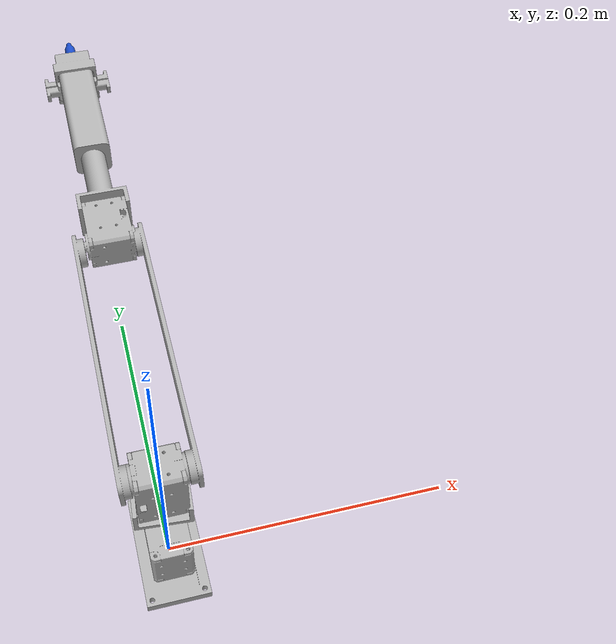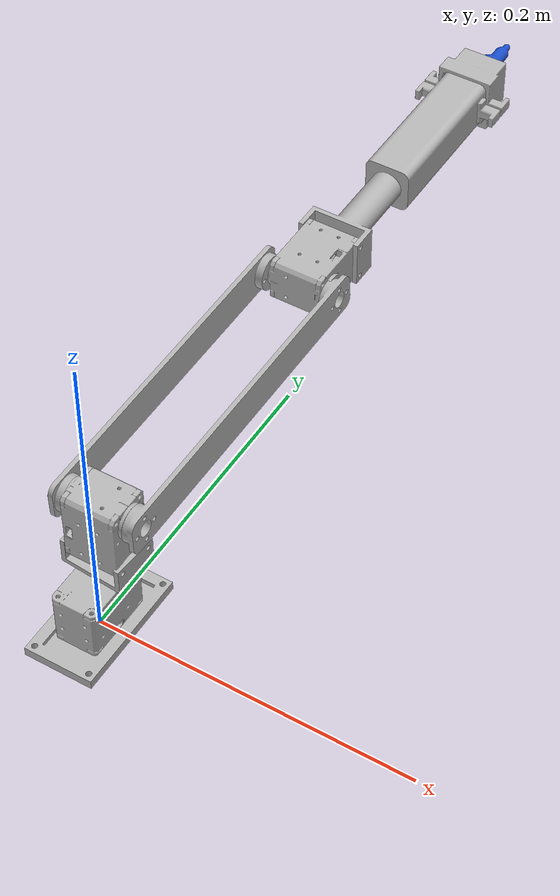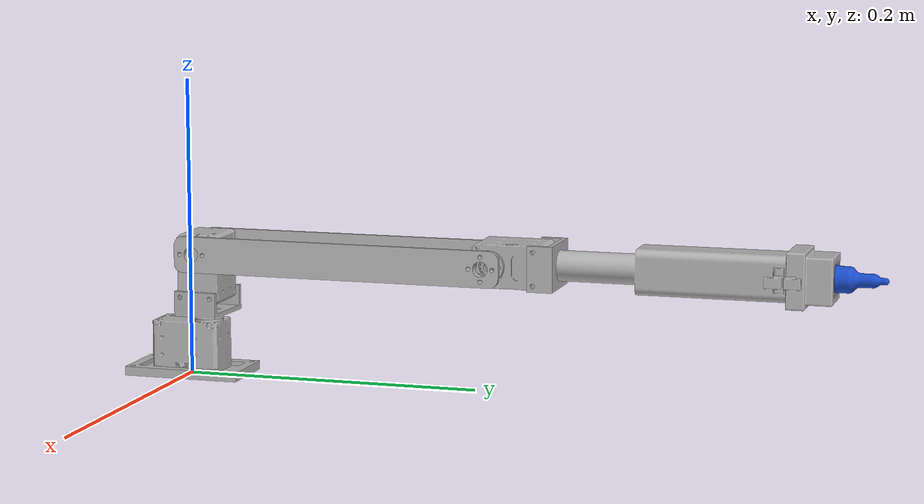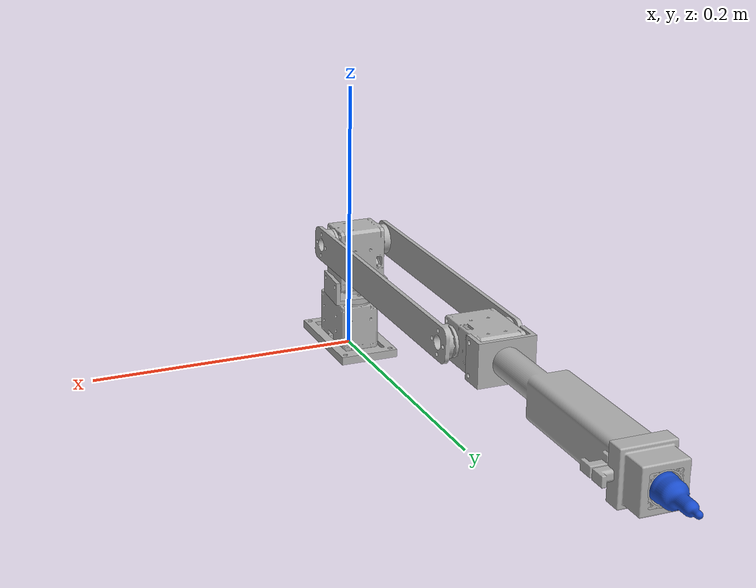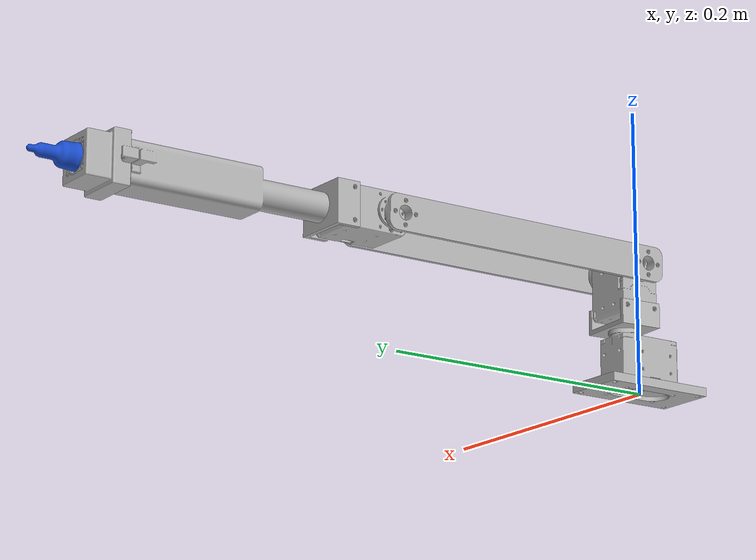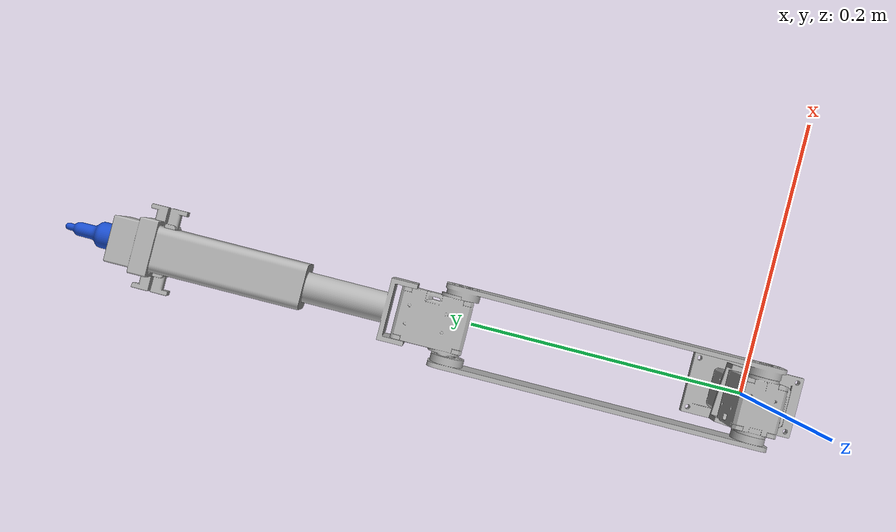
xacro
<?xml version="1.0"?>
<robot name="sketch_terminator" xmlns:xacro="http://ros.org/wiki/xacro">
  <!-- Main robot description (now contains all links and joints directly, without macros) -->
  <xacro:include filename="$(find sketch_terminator)/urdf/sketch_terminator.xacro" />

  <!-- Loading the hardware interface for Dynamixel motors -->
  <xacro:include filename="$(find sketch_terminator)/urdf/sketch_terminator.ros2_control.xacro" />

  <!-- Starting the ROS2 Control macro -->
  <xacro:sketch_terminator_ros2_control name="sketch_terminator_ros2_control" />
</robot>

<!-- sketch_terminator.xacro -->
<robot name="sketch_terminator" xmlns:xacro="http://www.ros.org/wiki/xacro">

  <xacro:include filename="materials.xacro" />

  <xacro:property name="half_pi" value="${pi/2}"/>
  <!-- Orientation that rotates the long-link meshes from how they were
       exported into how they sit on the arm. -->
  <xacro:property name="link_mesh_rpy" value="1.185714 1.513363 1.955879"/>

  <link name="world"/>

  <link name="base_link">
    <visual>
      <origin xyz="0 0 0" rpy="0 0 0"/>
      <geometry>
        <mesh filename="package://sketch_terminator/meshes/base_link.stl" scale="0.001 0.001 0.001"/>
      </geometry>
      <material name="silver"/>
    </visual>
    <collision>
      <origin xyz="0 0 0" rpy="0 0 0"/>
      <geometry>
        <mesh filename="package://sketch_terminator/meshes/base_link.stl" scale="0.001 0.001 0.001"/>
      </geometry>
    </collision>
    <inertial>
      <origin xyz="-0.0001 0.0 0.00261" rpy="0 0 0"/>
      <mass value="0.09510119488113095"/>
      <inertia ixx="6.6e-05" iyy="2.2e-05" izz="8.7e-05" ixy="0.0" iyz="0.0" ixz="0.0"/>
    </inertial>
  </link>

  <!-- Motor 1 (Dynamixel) mounted on base - rotates around Z (waist) -->
  <link name="DC11_A01_DUMMY_1">
    <visual>
      <origin xyz="0 0 0" rpy="0 0 0"/>
      <geometry>
        <mesh filename="package://sketch_terminator/meshes/dynamixel_xl430.stl" scale="0.001 0.001 0.001"/>
      </geometry>
      <material name="silver"/>
    </visual>
    <collision>
      <origin xyz="0 0 0" rpy="0 0 0"/>
      <geometry>
        <mesh filename="package://sketch_terminator/meshes/dynamixel_xl430.stl" scale="0.001 0.001 0.001"/>
      </geometry>
    </collision>
    <inertial>
      <origin xyz="0.00884 0.0 0.0" rpy="0 0 0"/>
      <mass value="0.3426594534663265"/>
      <inertia ixx="8.4e-05" iyy="9.6e-05" izz="5.6e-05" ixy="0.0" iyz="0.0" ixz="0.0"/>
    </inertial>
  </link>

  <!-- Virtual pivot frame for Revolute_2 — no geometry, just the rotation center -->
  <link name="bracket_pivot"/>

  <!-- L-bracket connecting motor 1 to motor 2 -->
  <link name="Link_90_1">
    <visual>
      <origin xyz="0 0 0" rpy="0 0 0"/>
      <geometry>
        <mesh filename="package://sketch_terminator/meshes/link_90_bracket.stl" scale="0.001 0.001 0.001"/>
      </geometry>
      <material name="silver"/>
    </visual>
    <collision>
      <origin xyz="0 0 0" rpy="0 0 0"/>
      <geometry>
        <mesh filename="package://sketch_terminator/meshes/link_90_bracket.stl" scale="0.001 0.001 0.001"/>
      </geometry>
    </collision>
    <inertial>
      <origin xyz="0.00545 -0.00040 0.00831" rpy="0 0 0"/>
      <mass value="0.07870797232814769"/>
      <inertia ixx="8e-06" iyy="2e-05" izz="2.3e-05" ixy="1e-06" iyz="0.0" ixz="-1e-06"/>
    </inertial>
  </link>

  <!-- Motor 2 (Dynamixel) inside L-bracket - rotates around Y (shoulder pitch) -->
  <link name="DC11_A01_DUMMY_2">
    <visual>
      <origin xyz="0 0 0" rpy="0 0 0"/>
      <geometry>
        <mesh filename="package://sketch_terminator/meshes/dynamixel_xl430.stl" scale="0.001 0.001 0.001"/>
      </geometry>
      <material name="silver"/>
    </visual>
    <collision>
      <origin xyz="0 0 0" rpy="0 0 0"/>
      <geometry>
        <mesh filename="package://sketch_terminator/meshes/dynamixel_xl430.stl" scale="0.001 0.001 0.001"/>
      </geometry>
    </collision>
    <inertial>
      <origin xyz="0.0 0.00884 0.0" rpy="0 0 0"/>
      <mass value="0.3426594534663265"/>
      <inertia ixx="9.6e-05" iyy="8.4e-05" izz="5.6e-05" ixy="0.0" iyz="0.0" ixz="0.0"/>
    </inertial>
  </link>

  <!-- Virtual pivot frame for Revolute_3 — no geometry, just the rotation center -->
  <link name="shoulder_pivot"/>

  <!-- First long arm link -->
  <link name="Long_Link_1">
    <inertial>
      <origin xyz="-0.00056 0.07207 0.06957" rpy="0 0 0"/>
      <mass value="0.14230160280394566"/>
      <inertia ixx="0.00069" iyy="0.000338" izz="0.000357" ixy="-2.6e-05" iyz="-0.000338" ixz="-2.5e-05"/>
    </inertial>
    <visual>
      <origin xyz="0 0 0" rpy="${link_mesh_rpy}"/>
      <geometry>
        <mesh filename="package://sketch_terminator/meshes/long_link_1.stl" scale="0.001 0.001 0.001"/>
      </geometry>
      <material name="silver"/>
    </visual>
    <collision>
      <origin xyz="0 0 0" rpy="${link_mesh_rpy}"/>
      <geometry>
        <mesh filename="package://sketch_terminator/meshes/long_link_1.stl" scale="0.001 0.001 0.001"/>
      </geometry>
    </collision>
  </link>

  <!-- Second long arm link -->
  <link name="Long_Link_2">
    <inertial>
      <origin xyz="0.01120 0.07120 0.06957" rpy="0 0 0"/>
      <mass value="0.14230160280394566"/>
      <inertia ixx="0.00069" iyy="0.000338" izz="0.000357" ixy="-2.6e-05" iyz="-0.000338" ixz="-2.5e-05"/>
    </inertial>
    <visual>
      <origin xyz="0 0 0" rpy="${link_mesh_rpy}"/>
      <geometry>
        <mesh filename="package://sketch_terminator/meshes/long_link_2.stl" scale="0.001 0.001 0.001"/>
      </geometry>
      <material name="silver"/>
    </visual>
    <collision>
      <origin xyz="0 0 0" rpy="${link_mesh_rpy}"/>
      <geometry>
        <mesh filename="package://sketch_terminator/meshes/long_link_2.stl" scale="0.001 0.001 0.001"/>
      </geometry>
    </collision>
  </link>

  <!-- =================== JOINTS =================== -->

  <!-- World to base -->
  <joint name="world_joint" type="fixed">
    <parent link="world"/>
    <child link="base_link"/>
    <origin xyz="0 0 0" rpy="0 0 0"/>
  </joint>

  <!-- Base to Motor 1: fixed mount -->
  <joint name="Revolute_1" type="fixed">
    <parent link="base_link"/>
    <child link="DC11_A01_DUMMY_1"/>
    <origin xyz="0 0.012 0.02" rpy="0 0 0"/>
  </joint>

  <!-- Revolute_2 pivot at the L-bracket's geometric center — rotates in place with no translation -->
  <joint name="joint3" type="revolute">
    <parent link="DC11_A01_DUMMY_1"/>
    <child link="bracket_pivot"/>
    <origin xyz="0 0 0.029" rpy="0 0 0"/>
    <axis xyz="0 0 1"/>
    <limit lower="-${half_pi}" upper="${half_pi}" effort="100" velocity="1.0"/>
  </joint>

  <!-- Bracket pivot to Link_90_1: fixed offset so bracket stays at its visual position -->
  <joint name="joint_bracket" type="fixed">
    <parent link="bracket_pivot"/>
    <child link="Link_90_1"/>
    <origin xyz="0 -0.012 -0.049" rpy="0 0 0"/>
  </joint>

  <!-- Link_90_1 to Motor 2: fixed, motor sits rigidly inside bracket rotated 90deg -->
  <joint name="Revolute_2b" type="fixed">
    <parent link="Link_90_1"/>
    <child link="DC11_A01_DUMMY_2"/>
    <origin xyz="0 0.0115 0.086" rpy="${half_pi} 0 ${half_pi}"/>
  </joint>

  <!-- Revolute_3 pivot at the bottom attachment point of the long links (where they meet motor 2) -->
  <joint name="joint1" type="revolute">
    <parent link="DC11_A01_DUMMY_2"/>
    <child link="shoulder_pivot"/>
    <origin xyz="-0.001 0 0.024" rpy="0 0 -${half_pi}"/>
    <axis xyz="0 0 1"/>
    <limit lower="-${half_pi}" upper="${half_pi}" effort="100" velocity="1.0"/>
  </joint>

  <!-- Shoulder pivot to Long_Link_1: fixed offset so links stay at their visual position -->
  <joint name="joint_longlinks" type="fixed">
    <parent link="shoulder_pivot"/>
    <child link="Long_Link_1"/>
    <origin xyz="-0.053 -0.068 -0.026" rpy="0 0 0"/>
  </joint>

  <!-- Long Link 1 to Long Link 2: fixed, both links rotate together via Revolute_3 -->
  <joint name="Revolute_6" type="fixed">
    <parent link="Long_Link_1"/>
    <child link="Long_Link_2"/>
    <origin xyz="0 0 0" rpy="0 0 0"/>
  </joint>

  <!-- ===== PEN HOLDER END EFFECTOR ===== -->

  <!-- Virtual pivot frame — no geometry, just the rotation center for Revolute_4 -->
  <link name="wrist_pivot"/>

  <!-- Wrist motor (Motor 3) at the start of the pen holder assembly -->
  <link name="DC11_A01_DUMMY_3">
    <visual>
      <origin xyz="0 0 0.08" rpy="${pi/2} ${pi} ${pi/2}"/>
      <geometry>
        <mesh filename="package://sketch_terminator/meshes/dynamixel_xl430.stl" scale="0.001 0.001 0.001"/>
      </geometry>
      <material name="silver"/>
    </visual>
    <collision>
      <origin xyz="0 0 0" rpy="0 0 0"/>
      <geometry>
        <mesh filename="package://sketch_terminator/meshes/dynamixel_xl430.stl" scale="0.001 0.001 0.001"/>
      </geometry>
    </collision>
    <inertial>
      <origin xyz="0.0 0.00884 0.0" rpy="0 0 0"/>
      <mass value="0.3426594534663265"/>
      <inertia ixx="9.6e-05" iyy="8.4e-05" izz="5.6e-05" ixy="0.0" iyz="0.0" ixz="0.0"/>
    </inertial>
  </link>

  <!-- Pen holder assembly driven by the wrist motor -->
  <link name="penholder">
    <visual>
      <origin xyz="0 0 -0.077" rpy="0 ${pi} 0"/>
      <geometry>
        <mesh filename="package://sketch_terminator/meshes/pen_holder_mount.stl" scale="0.001 0.001 0.001"/>
      </geometry>
      <material name="silver"/>
    </visual>
    <visual>
      <origin xyz="0 0 0" rpy="0 0 0"/>
      <geometry>
        <mesh filename="package://sketch_terminator/meshes/pen_holder.stl" scale="0.001 0.001 0.001"/>
      </geometry>
      <material name="silver"/>
    </visual>
    <visual>
      <origin xyz="0 0 0.1" rpy="0 -${pi} 0"/>
      <geometry>
        <mesh filename="package://sketch_terminator/meshes/pen_holder_stopper.stl" scale="0.001 0.001 0.001"/>
      </geometry>
      <material name="silver"/>
    </visual>
    <visual>
      <origin xyz="0 0 0" rpy="0 0 0"/>
      <geometry>
        <mesh filename="package://sketch_terminator/meshes/marker.stl" scale="0.001 0.001 0.001"/>
      </geometry>
      <material name="blue"/>
    </visual>
    <collision>
      <origin xyz="0 0 0" rpy="0 0 0"/>
      <geometry>
        <mesh filename="package://sketch_terminator/meshes/pen_holder_mount.stl" scale="0.001 0.001 0.001"/>
      </geometry>
    </collision>
    <inertial>
      <origin xyz="0 0 -0.07" rpy="0 0 0"/>
      <mass value="0.05"/>
      <inertia ixx="1e-04" iyy="1e-04" izz="1e-05" ixy="0" iyz="0" ixz="0"/>
    </inertial>
  </link>

  <!-- Revolute_4 pivot at the motor's geometric center — rotates in place with no translation -->
  <joint name="joint2" type="revolute">
    <parent link="Long_Link_2"/>
    <child link="wrist_pivot"/>
    <origin xyz="0.0525 0.270 0.004" rpy="-${half_pi} ${half_pi} 0"/>
    <axis xyz="1 0 0"/>
    <limit lower="-${half_pi}" upper="${half_pi}" effort="100" velocity="1.0"/>
  </joint>

  <!-- Wrist pivot to motor: fixed offset so motor stays at its manually-set visual position -->
  <joint name="joint_motor3" type="fixed">
    <parent link="wrist_pivot"/>
    <child link="DC11_A01_DUMMY_3"/>
    <origin xyz="0 0 -0.0775" rpy="0 0 0"/>
  </joint>

  <!-- Wrist motor output shaft to pen holder: fixed -->
  <joint name="joint_penholder" type="fixed">
    <parent link="DC11_A01_DUMMY_3"/>
    <child link="penholder"/>
    <origin xyz="0 0 0.2" rpy="0 0 0"/>
  </joint>

  <!-- Spring (Spring) — sits behind the marker, adjust origin to position it -->
  <link name="spring">
    <visual>
      <origin xyz="0 0 -0.019 " rpy="0 0 0"/>
      <geometry>
        <mesh filename="package://sketch_terminator/meshes/spring.stl" scale="0.001 0.001 0.001"/>
      </geometry>
      <material name="silver"/>
    </visual>
    <collision>
      <origin xyz="0 0 0" rpy="0 0 0"/>
      <geometry>
        <mesh filename="package://sketch_terminator/meshes/spring.stl" scale="0.001 0.001 0.001"/>
      </geometry>
    </collision>
    <inertial>
      <origin xyz="0 0 0" rpy="0 0 0"/>
      <mass value="0.01"/>
      <inertia ixx="1e-06" iyy="1e-06" izz="1e-06" ixy="0" iyz="0" ixz="0"/>
    </inertial>
  </link>

  <joint name="joint_spring" type="fixed">
    <parent link="penholder"/>
    <child link="spring"/>
    <origin xyz="0 0 0" rpy="0 0 0"/>
  </joint>

</robot>

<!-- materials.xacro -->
<!-- Shared colours for the RViz visual meshes. -->
<robot name="sketch_terminator_materials" xmlns:xacro="http://www.ros.org/wiki/xacro" >

<material name="silver">
  <color rgba="0.700 0.700 0.700 1.000"/>
</material>

<material name="blue">
  <color rgba="0.100 0.300 0.800 1.000"/>
</material>

</robot>
